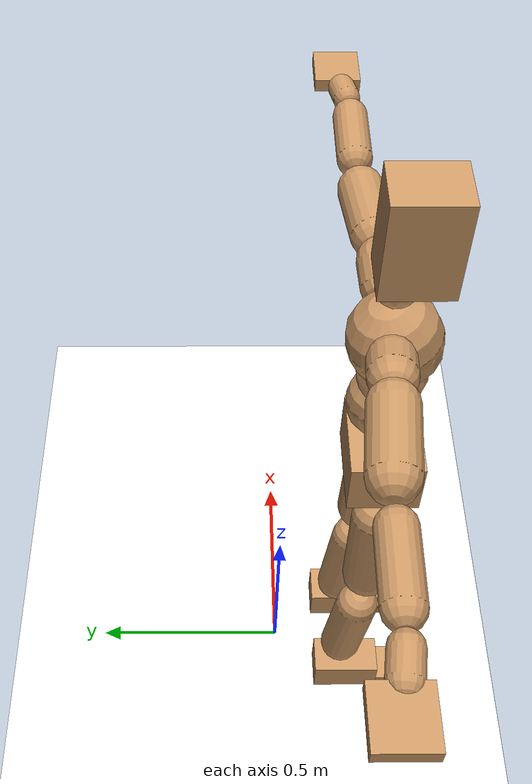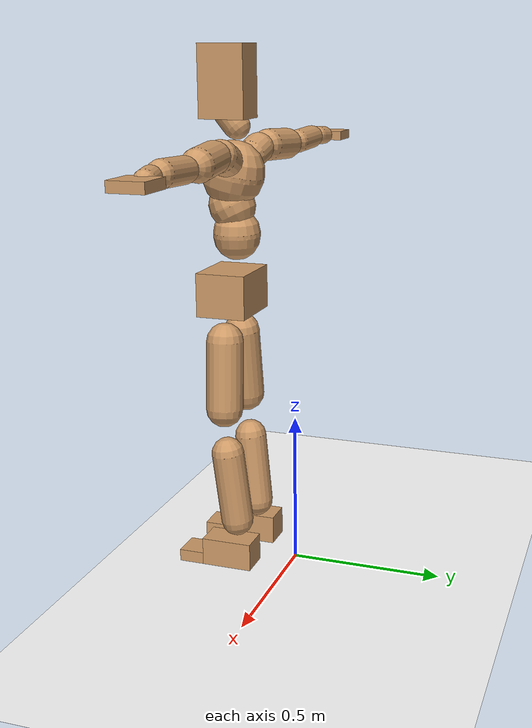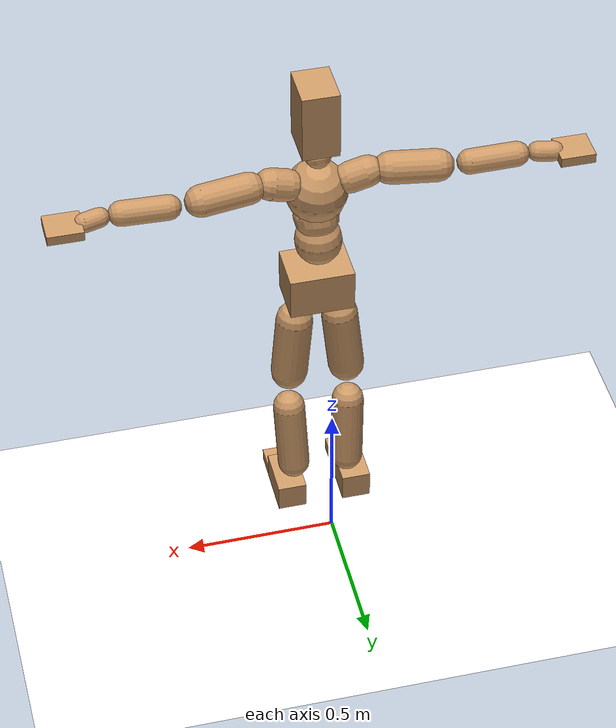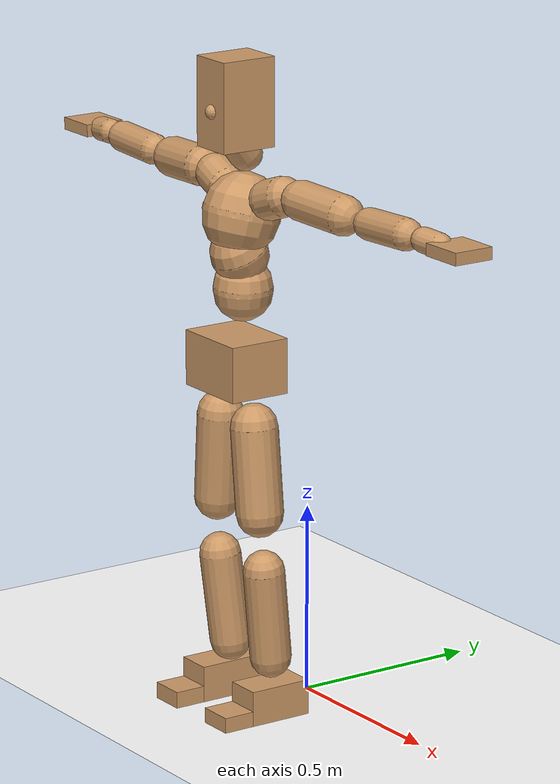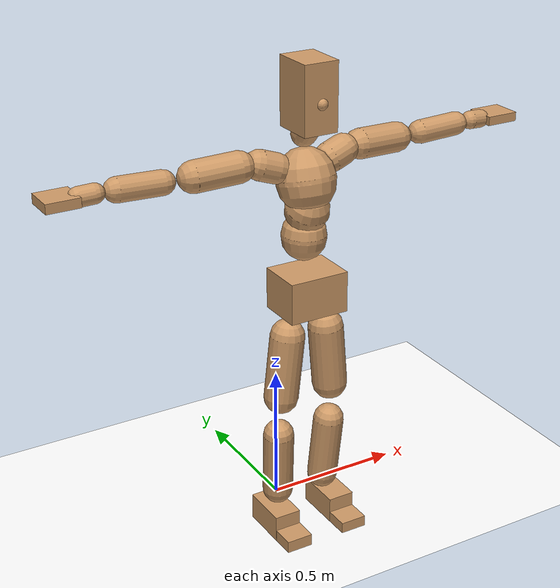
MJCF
<mujoco model="humanoid">
  <option integrator="implicitfast" />

  <visual>
    <global offwidth="1280" offheight="960" />
    <headlight active="1" ambient="0.34 0.34 0.34" diffuse="0.5 0.5 0.5" />
  </visual>

  <default>
    <joint damping="2" stiffness="2" armature="0.01" limited="true" solimplimit="0 .99 .01" />
    <geom condim="1" friction="0.7 0.005 0.0001" solimp=".99 .99 .003" solref="0.015 1" margin="0.001" rgba="0.8 0.6 .4 1" />
    <default class="smplcontact">
      <geom condim="3" friction="1. 0.005 0.0001" solref="0.015 1" solimp="0.98 0.98 0.001" priority="1" />
    </default>
    <default class="stiff_medium">
      <joint stiffness="10" />
    </default>
    <default class="stiff_medium_higher">
      <joint stiffness="50" />
    </default>
    <default class="stiff_high">
      <joint stiffness="100" />
    </default>
  </default>

  <asset>
    <texture type="skybox" builtin="gradient" rgb1="0.99 0.99 0.99" rgb2="0.608 0.828 0.892" width="100" />
    <texture builtin="flat" height="1278" mark="cross" markrgb="1 1 1" name="texgeom" random="0.01" rgb1="0.8 0.6 0.4" rgb2="0.8 0.6 0.4" type="cube" width="127" />
    <texture name="texplane" type="2d" builtin="checker" markrgb="1 1 1" rgb1="0.756 0.772 0.76" rgb2="0.6 0.6 0.6" width="100" height="100" />
    <material name="MatPlane" reflectance="0.5" texture="texplane" texrepeat="1 1" texuniform="true" />
    <material name="geom" texture="texgeom" texuniform="true" />
  </asset>

  <worldbody>
    <light name="tracking_light" pos="0 0 7" dir="0 0 -1" directional="true" cutoff="100" exponent="1" diffuse="1 1 1" specular="0.1 0.1 0.1" mode="trackcom" />
    <camera name="back" pos="0 3 2.4" xyaxes="-1 0 0 0 -1 2" mode="trackcom" />
    <camera name="side" pos="-3 0 2.4" xyaxes="0 -1 0 1 0 2" mode="trackcom" />
    <camera name="front_side" pos="-2.8 -2.8 0.8" xyaxes="0.5 -0.5 0 0.1 0.1 1" mode="trackcom" />
    <geom condim="3" name="floor" pos="0 0 0" rgba="1 1 1 1" size="100 100 .2" type="plane" material="MatPlane" />
    <body name="Pelvis" pos="-0.0018 -0.2233 0.9367" euler="90 0 0">
      <site name="Pelvis" size="0.01" />
      <freejoint name="Pelvis" />
      <geom type="box" pos="-0.0000 -0.0121 -0.0055" size="0.1069 0.0722 0.083" quat="1.0000 0.0000 0.0000 0.0000" density="3165.830099" name="Pelvis" />
      <body name="L_Hip" pos="0.0695 -0.0914 -0.0068">
        <joint name="L_Hip_x" type="hinge" pos="0 0 0" axis="1 0 0" stiffness="10.0" range="-160.0 22.92" class="stiff_medium" damping="15.0" armature="0.010000000000000002"/>
        <joint name="L_Hip_y" type="hinge" pos="0 0 0" axis="0 1 0" stiffness="10.0" range="-70.0 70.0" class="stiff_medium" damping="10.000000000000007" armature="0.010000000000000014"/>
        <joint name="L_Hip_z" type="hinge" pos="0 0 0" axis="0 0 1" stiffness="10.0" range="-28.65 90.0" class="stiff_medium" damping="9.999999999999998" armature="0.009999999999999998"/>
        <geom type="capsule" density="2040.816327" fromto="0.0069 -0.075 -0.0009 0.0274 -0.3002 -0.0036" size="0.0615" name="L_Hip" />
        <body name="L_Knee" pos="0.0343 -0.3752 -0.0045">
          <joint name="L_Knee_x" type="hinge" pos="0 0 0" axis="1 0 0" range="-5.16 171.89" damping="8.000000000000005" armature="0.010000000000000016" stiffness="2.0"/>
          <joint name="L_Knee_y" type="hinge" pos="0 0 0" axis="0 1 0" range="-4.58 6.88" damping="8.000000000000002" armature="0.010000000000000005" stiffness="2.0"/>
          <joint name="L_Knee_z" type="hinge" pos="0 0 0" axis="0 0 1" range="-6.88 4.58" damping="8.0" armature="0.01" stiffness="2.0"/>
          <geom type="capsule" density="1234.567901" fromto="-0.0027 -0.0796 -0.0087 -0.0109 -0.3184 -0.035" size="0.0541" name="L_Knee" />
          <body name="L_Ankle" pos="-0.0136 -0.398 -0.0437">
            <joint name="L_Ankle_x" type="hinge" pos="0 0 0" axis="1 0 0" range="-45.84 45.84" class="stiff_medium" damping="6.000000000000062" armature="0.010000000000000212" stiffness="10.0"/>
            <joint name="L_Ankle_y" type="hinge" pos="0 0 0" axis="0 1 0" range="-74.48 22.92" class="stiff_medium" damping="3.0" armature="0.010000000000000002" stiffness="10.0"/>
            <joint name="L_Ankle_z" type="hinge" pos="0 0 0" axis="0 0 1" range="-4.58 4.58" class="stiff_medium" damping="6.000000000000124" armature="0.010000000000000413" stiffness="10.0"/>
            <geom type="box" pos="0.0233 -0.0239 0.0242" size="0.0483 0.0464 0.085" quat="1.0000 0.0000 0.0000 0.0000" density="449.071558" name="L_Ankle" class="smplcontact" />
            <body name="L_Toe" pos="0.0264 -0.0558 0.1193">
              <joint name="L_Toe_x" type="hinge" pos="0 0 0" axis="1 0 0" range="-91.67 22.92" armature="0.009999999999999771" damping="1.999999999999977" stiffness="2.0"/>
              <joint name="L_Toe_y" type="hinge" pos="0 0 0" axis="0 1 0" range="-4.58 4.58" armature="0.01" damping="2.0" stiffness="2.0"/>
              <joint name="L_Toe_z" type="hinge" pos="0 0 0" axis="0 0 1" range="-4.58 4.58" armature="0.009999999999999851" damping="1.999999999999985" stiffness="2.0"/>
              <geom type="box" pos="-0.003 0.0055 0.0248" size="0.0478 0.02 0.0496" quat="1.0000 0.0000 0.0000 0.0000" density="423.206892" name="L_Toe" class="smplcontact" />
            </body>
          </body>
        </body>
      </body>
      <body name="R_Hip" pos="-0.0677 -0.0905 -0.0043">
        <joint name="R_Hip_x" type="hinge" pos="0 0 0" axis="1 0 0" stiffness="10.0" range="-160.0 22.92" class="stiff_medium" damping="15.0" armature="0.010000000000000002"/>
        <joint name="R_Hip_y" type="hinge" pos="0 0 0" axis="0 1 0" stiffness="10.0" range="-70.0 70.0" class="stiff_medium" damping="10.000000000000007" armature="0.010000000000000014"/>
        <joint name="R_Hip_z" type="hinge" pos="0 0 0" axis="0 0 1" stiffness="10.0" range="-90.0 28.65" class="stiff_medium" damping="9.999999999999998" armature="0.009999999999999998"/>
        <geom type="capsule" density="2040.816327" fromto="-0.0077 -0.0765 -0.0018 -0.0306 -0.3061 -0.0071" size="0.0606" name="R_Hip" />
        <body name="R_Knee" pos="-0.0383 -0.3826 -0.0089">
          <joint name="R_Knee_x" type="hinge" pos="0 0 0" axis="1 0 0" range="-5.16 171.89" damping="8.000000000000005" armature="0.010000000000000016" stiffness="2.0"/>
          <joint name="R_Knee_y" type="hinge" pos="0 0 0" axis="0 1 0" range="-6.88 4.58" damping="8.000000000000002" armature="0.010000000000000005" stiffness="2.0"/>
          <joint name="R_Knee_z" type="hinge" pos="0 0 0" axis="0 0 1" range="-4.58 6.88" damping="8.0" armature="0.01" stiffness="2.0"/>
          <geom type="capsule" density="1234.567901" fromto="0.0032 -0.0797 -0.0085 0.0126 -0.3187 -0.0338" size="0.0541" name="R_Knee" />
          <body name="R_Ankle" pos="0.0158 -0.3984 -0.0423">
            <joint name="R_Ankle_x" type="hinge" pos="0 0 0" axis="1 0 0" range="-45.84 45.84" class="stiff_medium" damping="6.000000000000062" armature="0.010000000000000212" stiffness="10.0"/>
            <joint name="R_Ankle_y" type="hinge" pos="0 0 0" axis="0 1 0" range="-22.92 74.48" class="stiff_medium" damping="3.0" armature="0.010000000000000002" stiffness="10.0"/>
            <joint name="R_Ankle_z" type="hinge" pos="0 0 0" axis="0 0 1" range="-4.58 4.58" class="stiff_medium" damping="6.000000000000124" armature="0.010000000000000413" stiffness="10.0"/>
            <geom type="box" pos="-0.0212 -0.0174 0.0256" size="0.0483 0.0478 0.0865" quat="1.0000 0.0000 0.0000 0.0000" density="434.700981" name="R_Ankle" class="smplcontact" />
            <body name="R_Toe" pos="-0.0254 -0.0481 0.1233">
              <joint name="R_Toe_x" type="hinge" pos="0 0 0" axis="1 0 0" range="-91.67 22.92" armature="0.009999999999999771" damping="1.999999999999977" stiffness="2.0"/>
              <joint name="R_Toe_y" type="hinge" pos="0 0 0" axis="0 1 0" range="-4.58 4.58" armature="0.01" damping="2.0" stiffness="2.0"/>
              <joint name="R_Toe_z" type="hinge" pos="0 0 0" axis="0 0 1" range="-4.58 4.58" armature="0.009999999999999851" damping="1.999999999999985" stiffness="2.0"/>
              <geom type="box" pos="0.0042 0.0045 0.0227" size="0.0479 0.0216 0.0493" quat="1.0000 0.0000 0.0000 0.0000" density="407.384095" name="R_Toe" class="smplcontact" />
            </body>
          </body>
        </body>
      </body>
      <body name="Torso" pos="-0.0025 0.109 -0.0267">
        <joint name="Torso_x" type="hinge" pos="0 0 0" axis="1 0 0" range="-25.78 57.3" class="stiff_medium" damping="14.973555921293716" armature="0.009972445878372918" stiffness="9.992305227272727"/>
        <joint name="Torso_y" type="hinge" pos="0 0 0" axis="0 1 0" range="-57.3 57.3" class="stiff_high" damping="19.98490406601156" armature="0.009999418009686187" stiffness="99.8549090909091"/>
        <joint name="Torso_z" type="hinge" pos="0 0 0" axis="0 0 1" range="-34.38 34.38" class="stiff_high" damping="19.975762007971678" armature="0.009981516520682807" stiffness="99.94249545454547"/>
        <geom type="capsule" density="2040.816327" fromto="0.0025 0.0608 0.0005 0.003 0.0743 0.0006" size="0.0769" name="Torso" />
        <body name="Spine" pos="0.0055 0.1352 0.0011">
          <joint name="Spine_x" type="hinge" pos="0 0 0" axis="1 0 0" stiffness="9.986322954545454" range="-25.78 57.3" class="stiff_medium" damping="14.953074008608068" armature="0.009951140099854146"/>
          <joint name="Spine_y" type="hinge" pos="0 0 0" axis="0 1 0" stiffness="9.986465909090906" range="-57.3 57.3" class="stiff_high" damping="7.994362933993977" armature="0.0099994456406993"/>
          <joint name="Spine_z" type="hinge" pos="0 0 0" axis="0 0 1" stiffness="19.969230909090903" range="-34.38 34.38" class="stiff_high" damping="11.97706668272621" armature="0.009977163740857189"/>
          <geom type="capsule" density="2040.816327" fromto="0.0007 0.0238 0.0114 0.0008 0.0291 0.014" size="0.0755" name="Spine" />
          <body name="Chest" pos="0.0015 0.0529 0.0254">
            <joint name="Chest_x" type="hinge" pos="0 0 0" axis="1 0 0" stiffness="9.974004545454546" range="-25.78 57.3" class="stiff_medium" damping="14.934350435567817" armature="0.009938494364844251"/>
            <joint name="Chest_y" type="hinge" pos="0 0 0" axis="0 1 0" stiffness="9.99046727272727" range="-57.3 57.3" class="stiff_high" damping="7.9962210076875655" armature="0.010000087561333802"/>
            <joint name="Chest_z" type="hinge" pos="0 0 0" axis="0 0 1" stiffness="19.958383181818185" range="-34.38 34.38" class="stiff_high" damping="11.973308395641112" armature="0.009976322608061389"/>
            <geom type="capsule" density="2040.816327" fromto="-0.0009 0.0682 -0.0173 -0.001 0.0833 -0.0212" size="0.1002" name="Chest" />
            <body name="Neck" pos="-0.0028 0.2139 -0.0429">
              <joint name="Neck_x" type="hinge" pos="0 0 0" axis="1 0 0" range="-28.65 57.3" class="stiff_medium_higher" damping="9.844860551306796" armature="0.009805180094036907" stiffness="49.42350795454546"/>
              <joint name="Neck_y" type="hinge" pos="0 0 0" axis="0 1 0" range="-40.11 40.11" class="stiff_medium_higher" damping="9.901982128915126" armature="0.00992148053203202" stiffness="49.41261022727273"/>
              <joint name="Neck_z" type="hinge" pos="0 0 0" axis="0 0 1" range="-40.11 40.11" class="stiff_medium_higher" damping="9.840476265306132" armature="0.009802507551935012" stiffness="49.392960227272724"/>
              <geom type="capsule" density="1000" fromto="0.001 0.013 0.0103 0.0041 0.052 0.0411" size="0.0436" name="Neck" />
              <body name="Head" pos="0.005135 0.0641875 0.0506588">
                <joint name="Head_x" type="hinge" pos="0 0 0" axis="1 0 0" range="-28.65 57.3" class="stiff_medium_higher" damping="1.9738122114427048" armature="0.009863125686178082" stiffness="49.374999999999986"/>
                <joint name="Head_y" type="hinge" pos="0 0 0" axis="0 1 0" range="-40.11 40.11" class="stiff_medium_higher" damping="1.9863222956451398" armature="0.009988547499182227" stiffness="49.374999999999986"/>
                <joint name="Head_z" type="hinge" pos="0 0 0" axis="0 0 1" range="-40.11 40.11" class="stiff_medium_higher" damping="1.973190723221756" armature="0.009856915519514932" stiffness="49.374999999999986"/>
                <geom type="box" pos="-0.0041475 0.086505 -0.011455" size="0.0606 0.1154 0.076" quat="1.0000 0.0000 0.0000 0.0000" density="1018.069894" name="Head" />
                <geom type="capsule" name="nose" size="0.02 0.01" pos="0 0.069125 0.049375" quat="1 0 0 0" mass="0" contype="0" conaffinity="0" />
              </body>
            </body>
            <body name="L_Thorax" pos="0.0788 0.1217 -0.0341">
              <joint name="L_Thorax_x" type="hinge" pos="0 0 0" axis="1 0 0" range="-10.89 4.58" class="stiff_medium_higher" damping="19.999999999999968" armature="0.009999999999999967" stiffness="50.0"/>
              <joint name="L_Thorax_y" type="hinge" pos="0 0 0" axis="0 1 0" range="-28.65 17.19" class="stiff_medium_higher" damping="20.0" armature="0.01" stiffness="50.0"/>
              <joint name="L_Thorax_z" type="hinge" pos="0 0 0" axis="0 0 1" range="-31.51 40.11" class="stiff_medium_higher" damping="20.0" armature="0.01" stiffness="50.0"/>
              <geom type="capsule" density="1000" fromto="0.0182 0.0061 -0.0018 0.0728 0.0244 -0.0071" size="0.0521" name="L_Thorax" />
              <body name="L_Shoulder" pos="0.091 0.0305 -0.0089">
                <joint name="L_Shoulder_x" type="hinge" pos="0 0 0" axis="1 0 0" range="-97.4 97.4" class="stiff_medium" damping="6.0000000000000515" armature="0.010000000000000174" stiffness="10.0"/>
                <joint name="L_Shoulder_y" type="hinge" pos="0 0 0" axis="0 1 0" range="-108.86 80.21" class="stiff_medium" damping="6.0" armature="0.010000000000000002" stiffness="10.0"/>
                <joint name="L_Shoulder_z" type="hinge" pos="0 0 0" axis="0 0 1" range="-97.4 85.94" class="stiff_medium" damping="6.000000000000002" armature="0.010000000000000005" stiffness="10.0"/>
                <geom type="capsule" density="1000" fromto="0.0519 -0.0026 -0.0055 0.2077 -0.0102 -0.022" size="0.0517" name="L_Shoulder" />
                <body name="L_Elbow" pos="0.2596 -0.0128 -0.0275">
                  <joint name="L_Elbow_x" type="hinge" pos="0 0 0" axis="1 0 0" range="-17.19 4.58" damping="4.999999999999943" armature="0.009999999999999773" stiffness="2.0"/>
                  <joint name="L_Elbow_y" type="hinge" pos="0 0 0" axis="0 1 0" range="-180.0 17.19" damping="5.0000000000000036" armature="0.010000000000000014" stiffness="2.0"/>
                  <joint name="L_Elbow_z" type="hinge" pos="0 0 0" axis="0 0 1" range="-100.84 4.58" damping="5.000000000000002" armature="0.010000000000000009" stiffness="2.0"/>
                  <geom type="capsule" density="1000" fromto="0.0498 0.0018 -0.0002 0.1994 0.0072 -0.0009" size="0.0405" name="L_Elbow" />
                  <body name="L_Wrist" pos="0.2492 0.009 -0.0012">
                    <joint name="L_Wrist_x" type="hinge" pos="0 0 0" axis="1 0 0" range="-180.0 22.92" armature="0.009999999999999702" damping="1.9999999999999702" stiffness="2.0"/>
                    <joint name="L_Wrist_y" type="hinge" pos="0 0 0" axis="0 1 0" range="-17.19 17.19" armature="0.010000000000000009" damping="2.000000000000001" stiffness="2.0"/>
                    <joint name="L_Wrist_z" type="hinge" pos="0 0 0" axis="0 0 1" range="-22.92 22.92" armature="0.010000000000000146" damping="2.0000000000000147" stiffness="2.0"/>
                    <geom type="capsule" density="1000" fromto="0.0168 -0.0016 -0.003 0.0672 -0.0065 -0.012" size="0.0318" name="L_Wrist" class="smplcontact" />
                    <body name="L_Hand" pos="0.084 -0.0082 -0.0149">
                      <joint name="L_Hand_x" type="hinge" pos="0 0 0" axis="1 0 0" range="-17.19 17.19" armature="0.010000000000000103" damping="2.00000000000001" stiffness="2.0"/>
                      <joint name="L_Hand_y" type="hinge" pos="0 0 0" axis="0 1 0" range="-51.57 51.57" armature="0.010000000000000071" damping="2.000000000000007" stiffness="2.0"/>
                      <joint name="L_Hand_z" type="hinge" pos="0 0 0" axis="0 0 1" range="-91.67 91.67" armature="0.010000000000000328" damping="2.000000000000033" stiffness="2.0"/>
                      <geom type="box" pos="0.0493 0.001 -0.0058" size="0.0585 0.0158 0.0538" quat="1.0000 0.0000 0.0000 0.0000" density="400.552564" name="L_Hand" class="smplcontact" />
                    </body>
                  </body>
                </body>
              </body>
            </body>
            <body name="R_Thorax" pos="-0.0818 0.1188 -0.0386">
              <joint name="R_Thorax_x" type="hinge" pos="0 0 0" axis="1 0 0" range="-10.89 4.58" class="stiff_medium_higher" damping="19.999999999999968" armature="0.009999999999999967" stiffness="50.0"/>
              <joint name="R_Thorax_y" type="hinge" pos="0 0 0" axis="0 1 0" range="-17.19 28.65" class="stiff_medium_higher" damping="20.0" armature="0.01" stiffness="50.0"/>
              <joint name="R_Thorax_z" type="hinge" pos="0 0 0" axis="0 0 1" range="-40.11 31.51" class="stiff_medium_higher" damping="20.0" armature="0.01" stiffness="50.0"/>
              <geom type="capsule" density="1000" fromto="-0.0192 0.0065 -0.0018 -0.0768 0.026 -0.0073" size="0.0511" name="R_Thorax" />
              <body name="R_Shoulder" pos="-0.096 0.0326 -0.0091">
                <joint name="R_Shoulder_x" type="hinge" pos="0 0 0" axis="1 0 0" range="-97.4 97.4" class="stiff_medium" damping="6.0000000000000515" armature="0.010000000000000174" stiffness="10.0"/>
                <joint name="R_Shoulder_y" type="hinge" pos="0 0 0" axis="0 1 0" range="-80.21 108.86" class="stiff_medium" damping="6.0" armature="0.010000000000000002" stiffness="10.0"/>
                <joint name="R_Shoulder_z" type="hinge" pos="0 0 0" axis="0 0 1" range="-85.94 97.4" class="stiff_medium" damping="6.000000000000002" armature="0.010000000000000005" stiffness="10.0"/>
                <geom type="capsule" density="1000" fromto="-0.0507 -0.0027 -0.0043 -0.203 -0.0107 -0.0171" size="0.0531" name="R_Shoulder" />
                <body name="R_Elbow" pos="-0.2537 -0.0133 -0.0214">
                  <joint name="R_Elbow_x" type="hinge" pos="0 0 0" axis="1 0 0" range="-17.19 4.58" damping="4.999999999999943" armature="0.009999999999999773" stiffness="2.0"/>
                  <joint name="R_Elbow_y" type="hinge" pos="0 0 0" axis="0 1 0" range="-17.19 180.0" damping="5.0000000000000036" armature="0.010000000000000014" stiffness="2.0"/>
                  <joint name="R_Elbow_z" type="hinge" pos="0 0 0" axis="0 0 1" range="-4.58 100.84" damping="5.000000000000002" armature="0.010000000000000009" stiffness="2.0"/>
                  <geom type="capsule" density="1000" fromto="-0.0511 0.0016 -0.0011 -0.2042 0.0062 -0.0044" size="0.0408" name="R_Elbow" />
                  <body name="R_Wrist" pos="-0.2553 0.0078 -0.0056">
                    <joint name="R_Wrist_x" type="hinge" pos="0 0 0" axis="1 0 0" range="-180.0 22.92" armature="0.009999999999999702" damping="1.9999999999999702" stiffness="2.0"/>
                    <joint name="R_Wrist_y" type="hinge" pos="0 0 0" axis="0 1 0" range="-17.19 17.19" armature="0.010000000000000009" damping="2.000000000000001" stiffness="2.0"/>
                    <joint name="R_Wrist_z" type="hinge" pos="0 0 0" axis="0 0 1" range="-22.92 22.92" armature="0.010000000000000146" damping="2.0000000000000147" stiffness="2.0"/>
                    <geom type="capsule" density="1000" fromto="-0.0169 -0.0012 -0.0021 -0.0677 -0.0049 -0.0083" size="0.0326" name="R_Wrist" class="smplcontact" />
                    <body name="R_Hand" pos="-0.0846 -0.0061 -0.0103">
                      <joint name="R_Hand_x" type="hinge" pos="0 0 0" axis="1 0 0" range="-17.19 17.19" armature="0.010000000000000103" damping="2.00000000000001" stiffness="2.0"/>
                      <joint name="R_Hand_y" type="hinge" pos="0 0 0" axis="0 1 0" range="-51.57 51.57" armature="0.010000000000000071" damping="2.000000000000007" stiffness="2.0"/>
                      <joint name="R_Hand_z" type="hinge" pos="0 0 0" axis="0 0 1" range="-91.67 91.67" armature="0.010000000000000328" damping="2.000000000000033" stiffness="2.0"/>
                      <geom type="box" pos="-0.0462 -0.0009 -0.0079" size="0.0569 0.0164 0.0546" quat="1.0000 0.0000 0.0000 0.0000" density="403.679611" name="R_Hand" class="smplcontact" />
                    </body>
                  </body>
                </body>
              </body>
            </body>
          </body>
        </body>
      </body>
    </body>
  </worldbody>
  <actuator>
    <general name="L_Hip_x" joint="L_Hip_x" biastype="affine" gainprm="287.33006409732246" biasprm="-215.3247604770444 -180.0 -2.0" ctrllimited="true" ctrlrange="-1 1" forcerange="-360.0 360.0" />
    <general name="L_Hip_y" joint="L_Hip_y" biastype="affine" gainprm="219.9114857512855" biasprm="0.0 -180.0 -2.0000000000000013" ctrllimited="true" ctrlrange="-1 1" forcerange="-360.0 360.0" />
    <general name="L_Hip_z" joint="L_Hip_z" biastype="affine" gainprm="186.3749841742145" biasprm="96.3683546488669 -180.0 -1.9999999999999998" ctrllimited="true" ctrlrange="-1 1" forcerange="-360.0 360.0" />
    <general name="L_Knee_x" joint="L_Knee_x" biastype="affine" gainprm="278.10948965903646" biasprm="261.8988715665131 -180.0 -2.0000000000000013" ctrllimited="true" ctrlrange="-1 1" forcerange="-360.0 360.0" />
    <general name="L_Knee_y" joint="L_Knee_y" biastype="affine" gainprm="18.001325905069514" biasprm="3.612831551628262 -180.0 -2.0000000000000004" ctrllimited="true" ctrlrange="-1 1" forcerange="-360.0 360.0" />
    <general name="L_Knee_z" joint="L_Knee_z" biastype="affine" gainprm="18.001325905069514" biasprm="-3.612831551628262 -180.0 -2.0" ctrllimited="true" ctrlrange="-1 1" forcerange="-360.0 360.0" />
    <general name="L_Ankle_x" joint="L_Ankle_x" biastype="affine" gainprm="72.00530362027807" biasprm="0.0 -90.0 -2.000000000000021" ctrllimited="true" ctrlrange="-1 1" forcerange="-180.0 180.0" />
    <general name="L_Ankle_y" joint="L_Ankle_y" biastype="affine" gainprm="76.49778111491148" biasprm="-40.49512930477244 -90.0 -2.0" ctrllimited="true" ctrlrange="-1 1" forcerange="-180.0 180.0" />
    <general name="L_Ankle_z" joint="L_Ankle_z" biastype="affine" gainprm="7.1942471767206255" biasprm="0.0 -90.0 -2.0000000000000413" ctrllimited="true" ctrlrange="-1 1" forcerange="-180.0 180.0" />
    <general name="L_Toe_x" joint="L_Toe_x" biastype="affine" gainprm="71.99902043497087" biasprm="-43.19689898685965 -72.0 -0.7999999999999908" ctrllimited="true" ctrlrange="-1 1" forcerange="-144.0 144.0" />
    <general name="L_Toe_y" joint="L_Toe_y" biastype="affine" gainprm="5.755397741376501" biasprm="0.0 -72.0 -0.8" ctrllimited="true" ctrlrange="-1 1" forcerange="-144.0 144.0" />
    <general name="L_Toe_z" joint="L_Toe_z" biastype="affine" gainprm="5.755397741376501" biasprm="0.0 -72.0 -0.799999999999994" ctrllimited="true" ctrlrange="-1 1" forcerange="-144.0 144.0" />
    <general name="R_Hip_x" joint="R_Hip_x" biastype="affine" gainprm="287.33006409732246" biasprm="-215.3247604770444 -180.0 -2.0" ctrllimited="true" ctrlrange="-1 1" forcerange="-360.0 360.0" />
    <general name="R_Hip_y" joint="R_Hip_y" biastype="affine" gainprm="219.9114857512855" biasprm="0.0 -180.0 -2.0000000000000013" ctrllimited="true" ctrlrange="-1 1" forcerange="-360.0 360.0" />
    <general name="R_Hip_z" joint="R_Hip_z" biastype="affine" gainprm="186.3749841742145" biasprm="-96.3683546488669 -180.0 -1.9999999999999998" ctrllimited="true" ctrlrange="-1 1" forcerange="-360.0 360.0" />
    <general name="R_Knee_x" joint="R_Knee_x" biastype="affine" gainprm="278.10948965903646" biasprm="261.8988715665131 -180.0 -2.0000000000000013" ctrllimited="true" ctrlrange="-1 1" forcerange="-360.0 360.0" />
    <general name="R_Knee_y" joint="R_Knee_y" biastype="affine" gainprm="18.001325905069514" biasprm="-3.612831551628262 -180.0 -2.0000000000000004" ctrllimited="true" ctrlrange="-1 1" forcerange="-360.0 360.0" />
    <general name="R_Knee_z" joint="R_Knee_z" biastype="affine" gainprm="18.001325905069514" biasprm="3.612831551628262 -180.0 -2.0" ctrllimited="true" ctrlrange="-1 1" forcerange="-360.0 360.0" />
    <general name="R_Ankle_x" joint="R_Ankle_x" biastype="affine" gainprm="72.00530362027807" biasprm="0.0 -90.0 -2.000000000000021" ctrllimited="true" ctrlrange="-1 1" forcerange="-180.0 180.0" />
    <general name="R_Ankle_y" joint="R_Ankle_y" biastype="affine" gainprm="76.49778111491148" biasprm="40.49512930477244 -90.0 -2.0" ctrllimited="true" ctrlrange="-1 1" forcerange="-180.0 180.0" />
    <general name="R_Ankle_z" joint="R_Ankle_z" biastype="affine" gainprm="7.1942471767206255" biasprm="0.0 -90.0 -2.0000000000000413" ctrllimited="true" ctrlrange="-1 1" forcerange="-180.0 180.0" />
    <general name="R_Toe_x" joint="R_Toe_x" biastype="affine" gainprm="71.99902043497087" biasprm="-43.19689898685965 -72.0 -0.7999999999999908" ctrllimited="true" ctrlrange="-1 1" forcerange="-144.0 144.0" />
    <general name="R_Toe_y" joint="R_Toe_y" biastype="affine" gainprm="5.755397741376501" biasprm="0.0 -72.0 -0.8" ctrllimited="true" ctrlrange="-1 1" forcerange="-144.0 144.0" />
    <general name="R_Toe_z" joint="R_Toe_z" biastype="affine" gainprm="5.755397741376501" biasprm="0.0 -72.0 -0.799999999999994" ctrllimited="true" ctrlrange="-1 1" forcerange="-144.0 144.0" />
    <general name="Torso_x" joint="Torso_x" biastype="affine" gainprm="173.8684542568657" biasprm="65.96453632855568 -239.81532545454544 -3.9929482456783245" ctrllimited="true" ctrlrange="-1 1" forcerange="-359.72298818181815 359.72298818181815" />
    <general name="Torso_y" joint="Torso_y" biastype="affine" gainprm="239.66943490220578" biasprm="0.0 -239.65178181818186 -3.996980813202312" ctrllimited="true" ctrlrange="-1 1" forcerange="-359.47767272727276 359.47767272727276" />
    <general name="Torso_z" joint="Torso_z" biastype="affine" gainprm="143.92779459545613" biasprm="0.0 -239.8619890909091 -3.9951524015943356" ctrllimited="true" ctrlrange="-1 1" forcerange="-359.79298363636366 359.79298363636366" />
    <general name="Spine_x" joint="Spine_x" biastype="affine" gainprm="173.76436130850433" biasprm="65.92504415556157 -239.67175090909092 -3.987486402295485" ctrllimited="true" ctrlrange="-1 1" forcerange="-359.50762636363635 359.50762636363635" />
    <general name="Spine_y" joint="Spine_y" biastype="affine" gainprm="239.69283662588228" biasprm="0.0 -239.67518181818176 -3.9971814669969885" ctrllimited="true" ctrlrange="-1 1" forcerange="-359.51277272727265 359.51277272727265" />
    <general name="Spine_z" joint="Spine_z" biastype="affine" gainprm="143.7890534672532" biasprm="0.0 -239.63077090909087 -3.9923555609087367" ctrllimited="true" ctrlrange="-1 1" forcerange="-359.4461563636363 359.4461563636363" />
    <general name="Chest_x" joint="Chest_x" biastype="affine" gainprm="173.550018101524" biasprm="65.843723766972 -239.3761090909091 -3.982493449484751" ctrllimited="true" ctrlrange="-1 1" forcerange="-359.0641636363636 359.0641636363636" />
    <general name="Chest_y" joint="Chest_y" biastype="affine" gainprm="239.78887642705948" biasprm="0.0 -239.7712145454545 -3.9981105038437827" ctrllimited="true" ctrlrange="-1 1" forcerange="-359.65682181818175 359.65682181818175" />
    <general name="Chest_z" joint="Chest_z" biastype="affine" gainprm="143.710944077667" biasprm="0.0 -239.50059818181822 -3.9911027985470375" ctrllimited="true" ctrlrange="-1 1" forcerange="-359.25089727272734 359.25089727272734" />
    <general name="Neck_x" joint="Neck_x" biastype="affine" gainprm="26.69066022184705" biasprm="8.896886740615683 -35.58492572727273 -0.7875888441045438" ctrllimited="true" ctrlrange="-1 1" forcerange="-71.16985145454547 71.16985145454547" />
    <general name="Neck_y" joint="Neck_y" biastype="affine" gainprm="24.905790014596608" biasprm="0.0 -35.577079363636365 -0.7921585703132101" ctrllimited="true" ctrlrange="-1 1" forcerange="-71.15415872727273 71.15415872727273" />
    <general name="Neck_z" joint="Neck_z" biastype="affine" gainprm="24.895885685083634" biasprm="0.0 -35.56293136363636 -0.7872381012244906" ctrllimited="true" ctrlrange="-1 1" forcerange="-71.12586272727272 71.12586272727272" />
    <general name="Head_x" joint="Head_x" biastype="affine" gainprm="17.77630933125614" biasprm="5.925436443752047 -23.699999999999992 -0.7895248845770819" ctrllimited="true" ctrlrange="-1 1" forcerange="-47.399999999999984 47.399999999999984" />
    <general name="Head_y" joint="Head_y" biastype="affine" gainprm="16.59122204250573" biasprm="0.0 -23.699999999999992 -0.7945289182580559" ctrllimited="true" ctrlrange="-1 1" forcerange="-47.399999999999984 47.399999999999984" />
    <general name="Head_z" joint="Head_z" biastype="affine" gainprm="16.59122204250573" biasprm="0.0 -23.699999999999992 -0.7892762892887024" ctrllimited="true" ctrlrange="-1 1" forcerange="-47.399999999999984 47.399999999999984" />
    <general name="L_Thorax_x" joint="L_Thorax_x" biastype="affine" gainprm="16.200146117011364" biasprm="-6.6078165480505335 -120.0 -1.5999999999999974" ctrllimited="true" ctrlrange="-1 1" forcerange="-240.0 240.0" />
    <general name="L_Thorax_y" joint="L_Thorax_y" biastype="affine" gainprm="48.00353574685204" biasprm="-12.00088393671301 -120.0 -1.6" ctrllimited="true" ctrlrange="-1 1" forcerange="-240.0 240.0" />
    <general name="L_Thorax_z" joint="L_Thorax_z" biastype="affine" gainprm="75.00028861670033" biasprm="9.00589894029074 -120.0 -1.6" ctrllimited="true" ctrlrange="-1 1" forcerange="-240.0 240.0" />
    <general name="L_Shoulder_x" joint="L_Shoulder_x" biastype="affine" gainprm="81.5976331892389" biasprm="0.0 -48.0 -1.6000000000000139" ctrllimited="true" ctrlrange="-1 1" forcerange="-96.0 96.0" />
    <general name="L_Shoulder_y" joint="L_Shoulder_y" biastype="affine" gainprm="79.19745640189629" biasprm="-12.00088393671301 -48.0 -1.6" ctrllimited="true" ctrlrange="-1 1" forcerange="-96.0 96.0" />
    <general name="L_Shoulder_z" joint="L_Shoulder_z" biastype="affine" gainprm="76.79727961455369" biasprm="-4.800353574685214 -48.0 -1.6000000000000005" ctrllimited="true" ctrlrange="-1 1" forcerange="-96.0 96.0" />
    <general name="L_Elbow_x" joint="L_Elbow_x" biastype="affine" gainprm="13.67849441372996" biasprm="-7.923096672353461 -72.0 -0.7999999999999909" ctrllimited="true" ctrlrange="-1 1" forcerange="-144.0 144.0" />
    <general name="L_Elbow_y" joint="L_Elbow_y" biastype="affine" gainprm="123.89813107227425" biasprm="-102.29653998619085 -72.0 -0.8000000000000006" ctrllimited="true" ctrlrange="-1 1" forcerange="-144.0 144.0" />
    <general name="L_Elbow_z" joint="L_Elbow_z" biastype="affine" gainprm="66.23733950828719" biasprm="-60.4819417669107 -72.0 -0.8000000000000004" ctrllimited="true" ctrlrange="-1 1" forcerange="-144.0 144.0" />
    <general name="L_Wrist_x" joint="L_Wrist_x" biastype="affine" gainprm="21.24973270888136" biasprm="-16.449379134196157 -12.0 -0.7999999999999882" ctrllimited="true" ctrlrange="-1 1" forcerange="-24.0 24.0" />
    <general name="L_Wrist_y" joint="L_Wrist_y" biastype="affine" gainprm="3.6002651810139037" biasprm="0.0 -12.0 -0.8000000000000004" ctrllimited="true" ctrlrange="-1 1" forcerange="-24.0 24.0" />
    <general name="L_Wrist_z" joint="L_Wrist_z" biastype="affine" gainprm="4.800353574685205" biasprm="0.0 -12.0 -0.8000000000000059" ctrllimited="true" ctrlrange="-1 1" forcerange="-24.0 24.0" />
    <general name="L_Hand_x" joint="L_Hand_x" biastype="affine" gainprm="3.6002651810139037" biasprm="0.0 -12.0 -0.8000000000000042" ctrllimited="true" ctrlrange="-1 1" forcerange="-24.0 24.0" />
    <general name="L_Hand_y" joint="L_Hand_y" biastype="affine" gainprm="10.800795543041708" biasprm="0.0 -12.0 -0.8000000000000029" ctrllimited="true" ctrlrange="-1 1" forcerange="-24.0 24.0" />
    <general name="L_Hand_z" joint="L_Hand_z" biastype="affine" gainprm="19.199319903638422" biasprm="0.0 -12.0 -0.8000000000000131" ctrllimited="true" ctrlrange="-1 1" forcerange="-24.0 24.0" />
    <general name="R_Thorax_x" joint="R_Thorax_x" biastype="affine" gainprm="16.200146117011364" biasprm="-6.6078165480505335 -120.0 -1.5999999999999974" ctrllimited="true" ctrlrange="-1 1" forcerange="-240.0 240.0" />
    <general name="R_Thorax_y" joint="R_Thorax_y" biastype="affine" gainprm="48.00353574685204" biasprm="12.000883936713002 -120.0 -1.6" ctrllimited="true" ctrlrange="-1 1" forcerange="-240.0 240.0" />
    <general name="R_Thorax_z" joint="R_Thorax_z" biastype="affine" gainprm="75.00028861670033" biasprm="-9.00589894029074 -120.0 -1.6" ctrllimited="true" ctrlrange="-1 1" forcerange="-240.0 240.0" />
    <general name="R_Shoulder_x" joint="R_Shoulder_x" biastype="affine" gainprm="81.5976331892389" biasprm="0.0 -48.0 -1.6000000000000139" ctrllimited="true" ctrlrange="-1 1" forcerange="-96.0 96.0" />
    <general name="R_Shoulder_y" joint="R_Shoulder_y" biastype="affine" gainprm="79.19745640189629" biasprm="12.00088393671301 -48.0 -1.6" ctrllimited="true" ctrlrange="-1 1" forcerange="-96.0 96.0" />
    <general name="R_Shoulder_z" joint="R_Shoulder_z" biastype="affine" gainprm="76.79727961455369" biasprm="4.800353574685204 -48.0 -1.6000000000000005" ctrllimited="true" ctrlrange="-1 1" forcerange="-96.0 96.0" />
    <general name="R_Elbow_x" joint="R_Elbow_x" biastype="affine" gainprm="13.67849441372996" biasprm="-7.923096672353461 -72.0 -0.7999999999999909" ctrllimited="true" ctrlrange="-1 1" forcerange="-144.0 144.0" />
    <general name="R_Elbow_y" joint="R_Elbow_y" biastype="affine" gainprm="123.89813107227425" biasprm="102.29653998619085 -72.0 -0.8000000000000006" ctrllimited="true" ctrlrange="-1 1" forcerange="-144.0 144.0" />
    <general name="R_Elbow_z" joint="R_Elbow_z" biastype="affine" gainprm="66.23733950828719" biasprm="60.481941766910694 -72.0 -0.8000000000000004" ctrllimited="true" ctrlrange="-1 1" forcerange="-144.0 144.0" />
    <general name="R_Wrist_x" joint="R_Wrist_x" biastype="affine" gainprm="21.24973270888136" biasprm="-16.449379134196157 -12.0 -0.7999999999999882" ctrllimited="true" ctrlrange="-1 1" forcerange="-24.0 24.0" />
    <general name="R_Wrist_y" joint="R_Wrist_y" biastype="affine" gainprm="3.6002651810139037" biasprm="0.0 -12.0 -0.8000000000000004" ctrllimited="true" ctrlrange="-1 1" forcerange="-24.0 24.0" />
    <general name="R_Wrist_z" joint="R_Wrist_z" biastype="affine" gainprm="4.800353574685205" biasprm="0.0 -12.0 -0.8000000000000059" ctrllimited="true" ctrlrange="-1 1" forcerange="-24.0 24.0" />
    <general name="R_Hand_x" joint="R_Hand_x" biastype="affine" gainprm="3.6002651810139037" biasprm="0.0 -12.0 -0.8000000000000042" ctrllimited="true" ctrlrange="-1 1" forcerange="-24.0 24.0" />
    <general name="R_Hand_y" joint="R_Hand_y" biastype="affine" gainprm="10.800795543041708" biasprm="0.0 -12.0 -0.8000000000000029" ctrllimited="true" ctrlrange="-1 1" forcerange="-24.0 24.0" />
    <general name="R_Hand_z" joint="R_Hand_z" biastype="affine" gainprm="19.199319903638422" biasprm="0.0 -12.0 -0.8000000000000131" ctrllimited="true" ctrlrange="-1 1" forcerange="-24.0 24.0" />
  </actuator>
  <contact>
    <exclude body1="Torso" body2="Chest" />
    <exclude body1="Head" body2="Chest" />
    <exclude body1="R_Knee" body2="R_Toe" />
    <exclude body1="R_Knee" body2="L_Ankle" />
    <exclude body1="R_Knee" body2="L_Toe" />
    <exclude body1="L_Knee" body2="L_Toe" />
    <exclude body1="L_Knee" body2="R_Ankle" />
    <exclude body1="L_Knee" body2="R_Toe" />
    <exclude body1="L_Shoulder" body2="Chest" />
    <exclude body1="R_Shoulder" body2="Chest" />
  </contact>
  <sensor>
    <framelinvel name="sensor_Pelvis_framelinvel" objtype="xbody" objname="Pelvis" />
    <framelinvel name="sensor_L_Hip_framelinvel" objtype="xbody" objname="L_Hip" />
    <framelinvel name="sensor_L_Knee_framelinvel" objtype="xbody" objname="L_Knee" />
    <framelinvel name="sensor_L_Ankle_framelinvel" objtype="xbody" objname="L_Ankle" />
    <framelinvel name="sensor_L_Toe_framelinvel" objtype="xbody" objname="L_Toe" />
    <framelinvel name="sensor_R_Hip_framelinvel" objtype="xbody" objname="R_Hip" />
    <framelinvel name="sensor_R_Knee_framelinvel" objtype="xbody" objname="R_Knee" />
    <framelinvel name="sensor_R_Ankle_framelinvel" objtype="xbody" objname="R_Ankle" />
    <framelinvel name="sensor_R_Toe_framelinvel" objtype="xbody" objname="R_Toe" />
    <framelinvel name="sensor_Torso_framelinvel" objtype="xbody" objname="Torso" />
    <framelinvel name="sensor_Spine_framelinvel" objtype="xbody" objname="Spine" />
    <framelinvel name="sensor_Chest_framelinvel" objtype="xbody" objname="Chest" />
    <framelinvel name="sensor_Neck_framelinvel" objtype="xbody" objname="Neck" />
    <framelinvel name="sensor_Head_framelinvel" objtype="xbody" objname="Head" />
    <framelinvel name="sensor_L_Thorax_framelinvel" objtype="xbody" objname="L_Thorax" />
    <framelinvel name="sensor_L_Shoulder_framelinvel" objtype="xbody" objname="L_Shoulder" />
    <framelinvel name="sensor_L_Elbow_framelinvel" objtype="xbody" objname="L_Elbow" />
    <framelinvel name="sensor_L_Wrist_framelinvel" objtype="xbody" objname="L_Wrist" />
    <framelinvel name="sensor_L_Hand_framelinvel" objtype="xbody" objname="L_Hand" />
    <framelinvel name="sensor_R_Thorax_framelinvel" objtype="xbody" objname="R_Thorax" />
    <framelinvel name="sensor_R_Shoulder_framelinvel" objtype="xbody" objname="R_Shoulder" />
    <framelinvel name="sensor_R_Elbow_framelinvel" objtype="xbody" objname="R_Elbow" />
    <framelinvel name="sensor_R_Wrist_framelinvel" objtype="xbody" objname="R_Wrist" />
    <framelinvel name="sensor_R_Hand_framelinvel" objtype="xbody" objname="R_Hand" />
    <frameangvel name="sensor_Pelvis_frameangvel" objtype="xbody" objname="Pelvis" />
    <frameangvel name="sensor_L_Hip_frameangvel" objtype="xbody" objname="L_Hip" />
    <frameangvel name="sensor_L_Knee_frameangvel" objtype="xbody" objname="L_Knee" />
    <frameangvel name="sensor_L_Ankle_frameangvel" objtype="xbody" objname="L_Ankle" />
    <frameangvel name="sensor_L_Toe_frameangvel" objtype="xbody" objname="L_Toe" />
    <frameangvel name="sensor_R_Hip_frameangvel" objtype="xbody" objname="R_Hip" />
    <frameangvel name="sensor_R_Knee_frameangvel" objtype="xbody" objname="R_Knee" />
    <frameangvel name="sensor_R_Ankle_frameangvel" objtype="xbody" objname="R_Ankle" />
    <frameangvel name="sensor_R_Toe_frameangvel" objtype="xbody" objname="R_Toe" />
    <frameangvel name="sensor_Torso_frameangvel" objtype="xbody" objname="Torso" />
    <frameangvel name="sensor_Spine_frameangvel" objtype="xbody" objname="Spine" />
    <frameangvel name="sensor_Chest_frameangvel" objtype="xbody" objname="Chest" />
    <frameangvel name="sensor_Neck_frameangvel" objtype="xbody" objname="Neck" />
    <frameangvel name="sensor_Head_frameangvel" objtype="xbody" objname="Head" />
    <frameangvel name="sensor_L_Thorax_frameangvel" objtype="xbody" objname="L_Thorax" />
    <frameangvel name="sensor_L_Shoulder_frameangvel" objtype="xbody" objname="L_Shoulder" />
    <frameangvel name="sensor_L_Elbow_frameangvel" objtype="xbody" objname="L_Elbow" />
    <frameangvel name="sensor_L_Wrist_frameangvel" objtype="xbody" objname="L_Wrist" />
    <frameangvel name="sensor_L_Hand_frameangvel" objtype="xbody" objname="L_Hand" />
    <frameangvel name="sensor_R_Thorax_frameangvel" objtype="xbody" objname="R_Thorax" />
    <frameangvel name="sensor_R_Shoulder_frameangvel" objtype="xbody" objname="R_Shoulder" />
    <frameangvel name="sensor_R_Elbow_frameangvel" objtype="xbody" objname="R_Elbow" />
    <frameangvel name="sensor_R_Wrist_frameangvel" objtype="xbody" objname="R_Wrist" />
    <frameangvel name="sensor_R_Hand_frameangvel" objtype="xbody" objname="R_Hand" />
    <subtreelinvel name="Chest_subtreelinvel" body="Chest" />
    <gyro name="Pelvis_gyro" site="Pelvis" />
  </sensor>
</mujoco>
